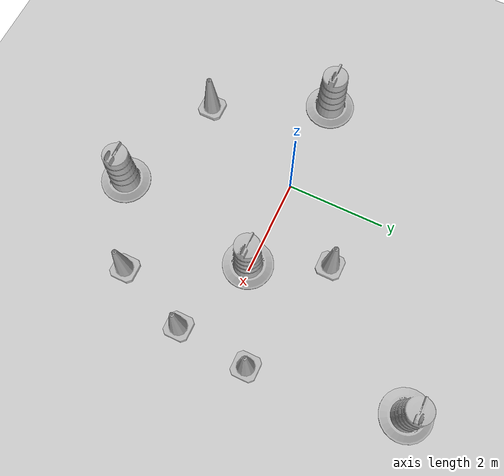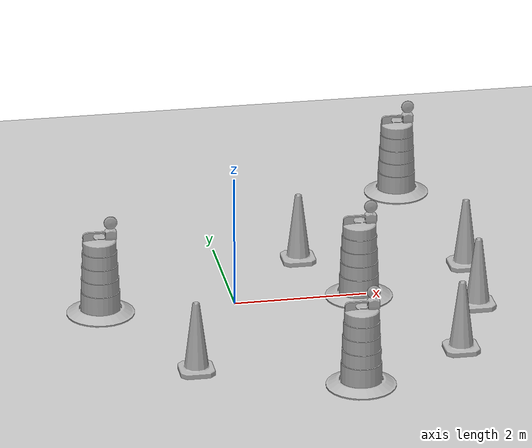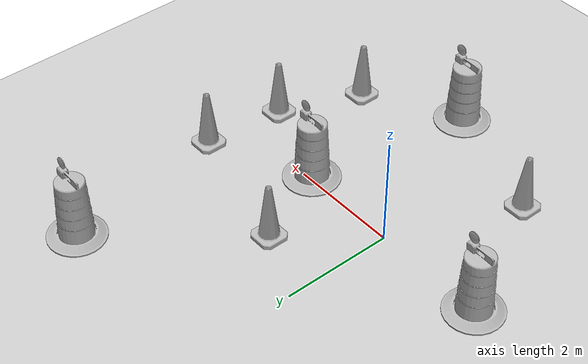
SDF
<sdf version="1.7">
 <world name="default">
  <light name="sun" type="directional">
   <pose>0 0 10 0 -0 0</pose>
   <diffuse>0.8 0.8 0.8 1</diffuse>
   <specular>0.2 0.2 0.2 1</specular>
   <attenuation>
    <range>1000</range>
    <constant>0.9</constant>
    <linear>0.01</linear>
    <quadratic>0.001</quadratic>
   </attenuation>
   <direction>-0.5 0.1 -0.9</direction>
   <spot><inner_angle>0</inner_angle><outer_angle>0</outer_angle><falloff>0</falloff></spot>
  </light>
  <model name="ground_plane">
   <static>1</static>
   <link name="link">
    <collision name="collision">
     <geometry><plane><normal>0 0 1</normal><size>100 100</size></plane></geometry>
     <surface>
      <contact><collide_bitmask>65535</collide_bitmask></contact>
      <friction><ode><mu>100</mu><mu2>50</mu2></ode></friction>
     </surface>
    </collision>
    <visual name="visual">
     <cast_shadows>0</cast_shadows>
     <geometry><plane><normal>0 0 1</normal><size>100 100</size></plane></geometry>
     <material>
      <script><uri>file://media/materials/scripts/gazebo.material</uri><name>Gazebo/Grey</name></script>
     </material>
    </visual>
   </link>
  </model>
  <gravity>0 0 -9.8</gravity>
  <magnetic_field>6e-06 2.3e-05 -4.2e-05</magnetic_field>
  <atmosphere type="adiabatic"/>
  <physics type="ode">
   <max_step_size>0.001</max_step_size>
   <real_time_factor>1</real_time_factor>
   <real_time_update_rate>1000</real_time_update_rate>
  </physics>
  <scene><ambient>0.4 0.4 0.4 1</ambient><background>0.7 0.7 0.7 1</background><shadows>1</shadows></scene>
  <spherical_coordinates>
   <surface_model>EARTH_WGS84</surface_model>
   <latitude_deg>0</latitude_deg>
   <longitude_deg>0</longitude_deg>
   <elevation>0</elevation>
   <heading_deg>0</heading_deg>
  </spherical_coordinates>
  <model name="Construction Barrel">
   <link name="link">
    <inertial>
     <pose>0 0 0.4 0 -0 0</pose>
     <mass>500</mass>
     <inertia><ixx>51.2096</ixx><iyy>51.2096</iyy><izz>25</izz><ixy>0</ixy><ixz>0</ixz><iyz>0</iyz></inertia>
    </inertial>
    <collision name="collision">
     <geometry><mesh><uri>model://construction_barrel/meshes/construction_barrel.dae</uri></mesh></geometry>
    </collision>
    <visual name="visual">
     <geometry><mesh><uri>model://construction_barrel/meshes/construction_barrel.dae</uri></mesh></geometry>
    </visual>
   </link>
   <pose>1.8752 -0.067161 -0 0 -0 0.000394</pose>
  </model>
  <model name="Construction Cone">
   <link name="link">
    <collision name="collision">
     <geometry>
      <mesh><scale>10 10 10</scale><uri>model://construction_cone/meshes/construction_cone.dae</uri></mesh>
     </geometry>
    </collision>
    <visual name="visual">
     <geometry>
      <mesh><scale>10 10 10</scale><uri>model://construction_cone/meshes/construction_cone.dae</uri></mesh>
     </geometry>
    </visual>
    <inertial>
     <inertia><ixx>1</ixx><ixy>0</ixy><ixz>0</ixz><iyy>1</iyy><iyz>0</iyz><izz>1</izz></inertia>
     <mass>1</mass>
    </inertial>
   </link>
   <pose>2.97741 -2.20233 0 -0 -0 -0</pose>
  </model>
  <model name="Construction Barrel_0">
   <link name="link">
    <inertial>
     <pose>0 0 0.4 0 -0 0</pose>
     <mass>500</mass>
     <inertia><ixx>51.2096</ixx><iyy>51.2096</iyy><izz>25</izz><ixy>0</ixy><ixz>0</ixz><iyz>0</iyz></inertia>
    </inertial>
    <collision name="collision">
     <geometry><mesh><uri>model://construction_barrel/meshes/construction_barrel.dae</uri></mesh></geometry>
    </collision>
    <visual name="visual">
     <geometry><mesh><uri>model://construction_barrel/meshes/construction_barrel.dae</uri></mesh></geometry>
    </visual>
   </link>
   <pose>-2.02854 -0.001117 0 1e-06 1e-06 -2.9e-05</pose>
  </model>
  <model name="Construction Barrel_1">
   <link name="link">
    <inertial>
     <pose>0 0 0.4 0 -0 0</pose>
     <mass>500</mass>
     <inertia><ixx>51.2096</ixx><iyy>51.2096</iyy><izz>25</izz><ixy>0</ixy><ixz>0</ixz><iyz>0</iyz></inertia>
    </inertial>
    <collision name="collision">
     <geometry><mesh><uri>model://construction_barrel/meshes/construction_barrel.dae</uri></mesh></geometry>
    </collision>
    <visual name="visual">
     <geometry><mesh><uri>model://construction_barrel/meshes/construction_barrel.dae</uri></mesh></geometry>
    </visual>
   </link>
   <pose>1.3098 -3.10772 -0 0 0 -2e-05</pose>
  </model>
  <model name="Construction Cone_0">
   <link name="link">
    <collision name="collision">
     <geometry>
      <mesh><scale>10 10 10</scale><uri>model://construction_cone/meshes/construction_cone.dae</uri></mesh>
     </geometry>
    </collision>
    <visual name="visual">
     <geometry>
      <mesh><scale>10 10 10</scale><uri>model://construction_cone/meshes/construction_cone.dae</uri></mesh>
     </geometry>
    </visual>
    <inertial>
     <inertia><ixx>1</ixx><ixy>0</ixy><ixz>0</ixz><iyy>1</iyy><iyz>0</iyz><izz>1</izz></inertia>
     <mass>1</mass>
    </inertial>
   </link>
   <pose>3.55303 -0.723164 -0 0 -0 0</pose>
  </model>
  <model name="Construction Cone_1">
   <link name="link">
    <collision name="collision">
     <geometry>
      <mesh><scale>10 10 10</scale><uri>model://construction_cone/meshes/construction_cone.dae</uri></mesh>
     </geometry>
    </collision>
    <visual name="visual">
     <geometry>
      <mesh><scale>10 10 10</scale><uri>model://construction_cone/meshes/construction_cone.dae</uri></mesh>
     </geometry>
    </visual>
    <inertial>
     <inertia><ixx>1</ixx><ixy>0</ixy><ixz>0</ixz><iyy>1</iyy><iyz>0</iyz><izz>1</izz></inertia>
     <mass>1</mass>
    </inertial>
   </link>
   <pose>-0.941691 -2.25505 -0 0 -0 0</pose>
  </model>
  <model name="Construction Cone_2">
   <link name="link">
    <collision name="collision">
     <geometry>
      <mesh><scale>10 10 10</scale><uri>model://construction_cone/meshes/construction_cone.dae</uri></mesh>
     </geometry>
    </collision>
    <visual name="visual">
     <geometry>
      <mesh><scale>10 10 10</scale><uri>model://construction_cone/meshes/construction_cone.dae</uri></mesh>
     </geometry>
    </visual>
    <inertial>
     <inertia><ixx>1</ixx><ixy>0</ixy><ixz>0</ixz><iyy>1</iyy><iyz>0</iyz><izz>1</izz></inertia>
     <mass>1</mass>
    </inertial>
   </link>
   <pose>1.2169 1.40161 -0 0 -0 0</pose>
  </model>
  <model name="Construction Cone_3">
   <link name="link">
    <collision name="collision">
     <geometry>
      <mesh><scale>10 10 10</scale><uri>model://construction_cone/meshes/construction_cone.dae</uri></mesh>
     </geometry>
    </collision>
    <visual name="visual">
     <geometry>
      <mesh><scale>10 10 10</scale><uri>model://construction_cone/meshes/construction_cone.dae</uri></mesh>
     </geometry>
    </visual>
    <inertial>
     <inertia><ixx>1</ixx><ixy>0</ixy><ixz>0</ixz><iyy>1</iyy><iyz>0</iyz><izz>1</izz></inertia>
     <mass>1</mass>
    </inertial>
   </link>
   <pose>3.6886 0.754977 -0 0 -0 0</pose>
  </model>
  <model name="Construction Barrel_2">
   <link name="link">
    <inertial>
     <pose>0 0 0.4 0 -0 0</pose>
     <mass>500</mass>
     <inertia><ixx>51.2096</ixx><iyy>51.2096</iyy><izz>25</izz><ixy>0</ixy><ixz>0</ixz><iyz>0</iyz></inertia>
    </inertial>
    <collision name="collision">
     <geometry><mesh><uri>model://construction_barrel/meshes/construction_barrel.dae</uri></mesh></geometry>
    </collision>
    <visual name="visual">
     <geometry><mesh><uri>model://construction_barrel/meshes/construction_barrel.dae</uri></mesh></geometry>
    </visual>
   </link>
   <pose>3.23728 3.77413 -1e-06 2e-06 -1e-06 -1.3e-05</pose>
  </model>
 </world>
</sdf>
